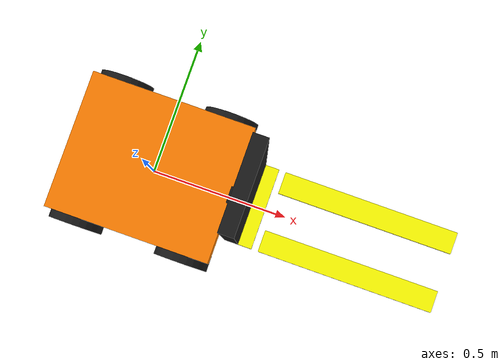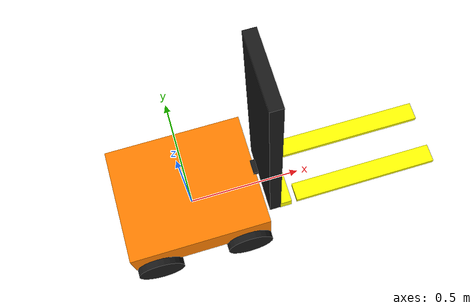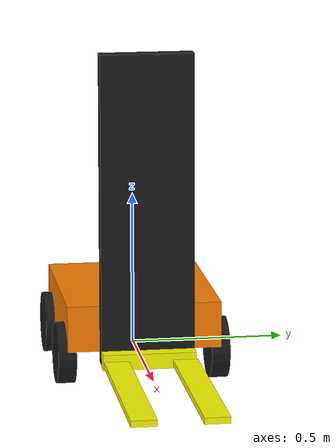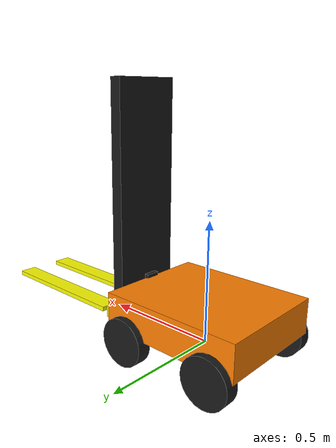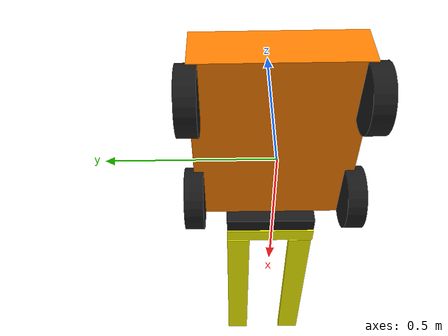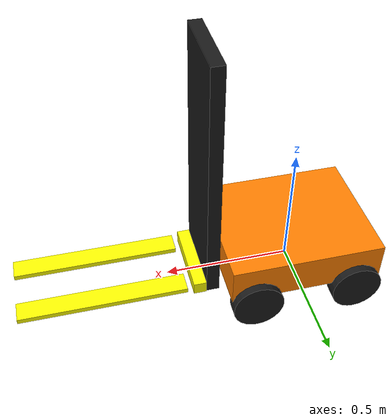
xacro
<?xml version="1.0"?>
<robot name="forklift">

  <material name="orange"><color rgba="1 0.5 0 1"/></material>
  <material name="black"><color rgba="0.1 0.1 0.1 1"/></material>
  <material name="yellow"><color rgba="1 1 0 1"/></material>

  <!-- BASE -->
  <link name="base_footprint"/>

  <link name="base_link">
    <visual>
      <geometry><box size="0.6 0.5 0.15"/></geometry>
      <material name="orange"/>
    </visual>
    <collision>
      <geometry><box size="0.6 0.5 0.15"/></geometry>
    </collision>
    <inertial>
      <mass value="8.0"/>
      <inertia ixx="0.2" ixy="0" ixz="0" iyy="0.3" iyz="0" izz="0.2"/>
    </inertial>
  </link>

  <joint name="base_joint" type="fixed">
    <parent link="base_footprint"/>
    <child link="base_link"/>
    <origin xyz="0 0 0.125"/>
  </joint>

  <!-- MAST -->
  <link name="mast_link">
    <visual>
      <geometry><box size="0.05 0.3 1.0"/></geometry>
      <material name="black"/>
    </visual>
    <collision>
      <geometry><box size="0.05 0.3 1.0"/></geometry>
    </collision>
    <inertial>
      <mass value="0.5"/>
      <inertia ixx="0.04" ixy="0" ixz="0" iyy="0.04" iyz="0" izz="0.001"/>
    </inertial>
  </link>

  <joint name="mast_joint" type="fixed">
    <parent link="base_link"/>
    <child link="mast_link"/>
    <origin xyz="0.35 0 0.4"/>
  </joint>

  <!-- FORK CARRIAGE (moves up/down) -->
  <link name="fork_carriage">
    <visual>
      <geometry><box size="0.05 0.3 0.05"/></geometry>
      <material name="yellow"/>
    </visual>
    <collision>
      <geometry><box size="0.05 0.3 0.05"/></geometry>
    </collision>
    <inertial>
      <mass value="0.5"/>
      <inertia ixx="0.005" ixy="0" ixz="0" iyy="0.005" iyz="0" izz="0.005"/>
    </inertial>
  </link>

  <joint name="fork_lift_joint" type="prismatic">
    <parent link="mast_link"/>
    <child link="fork_carriage"/>
    <origin xyz="0.05 0 -0.48"/>
    <axis xyz="0 0 1"/>
    <limit lower="-0.12" upper="0.5" effort="50000" velocity="5.0"/>
    <dynamics damping="50.0" friction="0.0"/>
  </joint>

  <gazebo reference="fork_lift_joint">
    <implicitSpringDamper>false</implicitSpringDamper>
    <provideFeedback>true</provideFeedback>
  </gazebo>

  <!-- LEFT FORK TINE (Extended to 0.65m) -->
  <link name="left_fork">
    <visual>
      <origin xyz="0.325 0 0"/>
      <geometry><box size="0.65 0.08 0.02"/></geometry>
      <material name="yellow"/>
    </visual>
    <collision>
      <origin xyz="0.325 0 0"/>
      <geometry><box size="0.65 0.08 0.02"/></geometry>
    </collision>
    <inertial>
      <origin xyz="0.325 0 0"/>
      <mass value="0.01"/>
      <inertia ixx="0.00001" ixy="0" ixz="0" iyy="0.0001" iyz="0" izz="0.0001"/>
    </inertial>
  </link>

  <joint name="left_fork_joint" type="fixed">
    <parent link="fork_carriage"/>
    <child link="left_fork"/>
    <origin xyz="0.05 0.11 0"/>
  </joint>

  <!-- RIGHT FORK TINE (Extended to 0.65m) -->
  <link name="right_fork">
    <visual>
      <origin xyz="0.325 0 0"/>
      <geometry><box size="0.65 0.08 0.02"/></geometry>
      <material name="yellow"/>
    </visual>
    <collision>
      <origin xyz="0.325 0 0"/>
      <geometry><box size="0.65 0.08 0.02"/></geometry>
    </collision>
    <inertial>
      <origin xyz="0.325 0 0"/>
      <mass value="0.01"/>
      <inertia ixx="0.00001" ixy="0" ixz="0" iyy="0.0001" iyz="0" izz="0.0001"/>
    </inertial>
  </link>

  <joint name="right_fork_joint" type="fixed">
    <parent link="fork_carriage"/>
    <child link="right_fork"/>
    <origin xyz="0.05 -0.11 0"/>
  </joint>

  <!-- CAMERA -->
  <link name="camera_link">
    <visual>
      <geometry><box size="0.02 0.06 0.02"/></geometry>
      <material name="black"/>
    </visual>
    <inertial>
      <mass value="0.05"/>
      <inertia ixx="0.0001" ixy="0" ixz="0" iyy="0.0001" iyz="0" izz="0.0001"/>
    </inertial>
  </link>

  <joint name="camera_joint" type="fixed">
    <parent link="base_link"/>
    <child link="camera_link"/>
    <origin xyz="0.3 0 0.08"/>
  </joint>

  <!-- LEFT FRONT WHEEL -->
  <link name="left_front_wheel">
    <visual>
      <origin rpy="1.57 0 0"/>
      <geometry><cylinder radius="0.1" length="0.06"/></geometry>
      <material name="black"/>
    </visual>
    <collision>
      <origin rpy="1.57 0 0"/>
      <geometry><cylinder radius="0.1" length="0.06"/></geometry>
    </collision>
    <inertial>
      <mass value="2.0"/>
      <inertia ixx="0.01" ixy="0" ixz="0" iyy="0.015" iyz="0" izz="0.01"/>
    </inertial>
  </link>
  <joint name="left_front_wheel_joint" type="continuous">
    <parent link="base_link"/>
    <child link="left_front_wheel"/>
    <origin xyz="0.2 0.25 -0.1"/>
    <axis xyz="0 1 0"/>
    <dynamics damping="0.1" friction="0.1"/>
  </joint>

  <!-- LEFT REAR WHEEL -->
  <link name="left_rear_wheel">
    <visual>
      <origin rpy="1.57 0 0"/>
      <geometry><cylinder radius="0.1" length="0.06"/></geometry>
      <material name="black"/>
    </visual>
    <collision>
      <origin rpy="1.57 0 0"/>
      <geometry><cylinder radius="0.1" length="0.06"/></geometry>
    </collision>
    <inertial>
      <mass value="2.0"/>
      <inertia ixx="0.01" ixy="0" ixz="0" iyy="0.015" iyz="0" izz="0.01"/>
    </inertial>
  </link>
  <joint name="left_rear_wheel_joint" type="continuous">
    <parent link="base_link"/>
    <child link="left_rear_wheel"/>
    <origin xyz="-0.2 0.25 -0.1"/>
    <axis xyz="0 1 0"/>
    <dynamics damping="0.0" friction="0.0"/>
  </joint>

  <!-- RIGHT FRONT WHEEL -->
  <link name="right_front_wheel">
    <visual>
      <origin rpy="1.57 0 0"/>
      <geometry><cylinder radius="0.1" length="0.06"/></geometry>
      <material name="black"/>
    </visual>
    <collision>
      <origin rpy="1.57 0 0"/>
      <geometry><cylinder radius="0.1" length="0.06"/></geometry>
    </collision>
    <inertial>
      <mass value="2.0"/>
      <inertia ixx="0.01" ixy="0" ixz="0" iyy="0.015" iyz="0" izz="0.01"/>
    </inertial>
  </link>
  <joint name="right_front_wheel_joint" type="continuous">
    <parent link="base_link"/>
    <child link="right_front_wheel"/>
    <origin xyz="0.2 -0.25 -0.1"/>
    <axis xyz="0 1 0"/>
    <dynamics damping="0.1" friction="0.1"/>
  </joint>

  <!-- RIGHT REAR WHEEL -->
  <link name="right_rear_wheel">
    <visual>
      <origin rpy="1.57 0 0"/>
      <geometry><cylinder radius="0.1" length="0.06"/></geometry>
      <material name="black"/>
    </visual>
    <collision>
      <origin rpy="1.57 0 0"/>
      <geometry><cylinder radius="0.1" length="0.06"/></geometry>
    </collision>
    <inertial>
      <mass value="2.0"/>
      <inertia ixx="0.01" ixy="0" ixz="0" iyy="0.015" iyz="0" izz="0.01"/>
    </inertial>
  </link>
  <joint name="right_rear_wheel_joint" type="continuous">
    <parent link="base_link"/>
    <child link="right_rear_wheel"/>
    <origin xyz="-0.2 -0.25 -0.1"/>
    <axis xyz="0 1 0"/>
    <dynamics damping="0.0" friction="0.0"/>
  </joint>

  <!-- ros2_control for joint control -->
  <ros2_control name="GazeboSystem" type="system">
    <hardware>
      <plugin>gazebo_ros2_control/GazeboSystem</plugin>
    </hardware>

    <!-- Drive wheels (front wheels only for better turning like real forklifts) -->
    <joint name="left_front_wheel_joint">
      <command_interface name="velocity">
        <param name="min">-10</param>
        <param name="max">10</param>
      </command_interface>
      <state_interface name="velocity"/>
      <state_interface name="position"/>
    </joint>

    <joint name="right_front_wheel_joint">
      <command_interface name="velocity">
        <param name="min">-10</param>
        <param name="max">10</param>
      </command_interface>
      <state_interface name="velocity"/>
      <state_interface name="position"/>
    </joint>

    <!-- Fork lift joint -->
    <joint name="fork_lift_joint">
      <command_interface name="position">
        <param name="min">-0.12</param>
        <param name="max">0.5</param>
      </command_interface>
      <state_interface name="position"/>
      <state_interface name="velocity"/>
    </joint>
  </ros2_control>

  <!-- Gazebo ros2_control plugin -->
  <gazebo>
    <plugin filename="libgazebo_ros2_control.so" name="gazebo_ros2_control">
      <parameters>$(find forklift_bot)/config/controllers.yaml</parameters>
    </plugin>
  </gazebo>

  <!-- CAMERA -->
  <gazebo reference="camera_link">
    <sensor type="camera" name="camera">
      <always_on>true</always_on>
      <update_rate>30.0</update_rate>
      <camera>
        <horizontal_fov>1.39</horizontal_fov>
        <image>
          <width>640</width>
          <height>480</height>
          <format>R8G8B8</format>
        </image>
        <clip>
          <near>0.05</near>
          <far>50</far>
        </clip>
      </camera>
      <plugin name="camera_controller" filename="libgazebo_ros_camera.so">
        <cameraName>camera</cameraName>
        <imageTopicName>image_raw</imageTopicName>
        <cameraInfoTopicName>camera_info</cameraInfoTopicName>
        <frameName>camera_link</frameName>
      </plugin>
    </sensor>
  </gazebo>

  <!-- Wheel friction and materials -->
  <gazebo reference="left_front_wheel"><mu1>1.5</mu1><mu2>1.5</mu2><kp>1000000.0</kp><kd>100.0</kd><material>Gazebo/FlatBlack</material></gazebo>
  <gazebo reference="right_front_wheel"><mu1>1.5</mu1><mu2>1.5</mu2><kp>1000000.0</kp><kd>100.0</kd><material>Gazebo/FlatBlack</material></gazebo>
  <gazebo reference="left_rear_wheel"><mu1>0.3</mu1><mu2>0.3</mu2><kp>1000000.0</kp><kd>0.1</kd><material>Gazebo/FlatBlack</material></gazebo>
  <gazebo reference="right_rear_wheel"><mu1>0.3</mu1><mu2>0.3</mu2><kp>1000000.0</kp><kd>0.1</kd><material>Gazebo/FlatBlack</material></gazebo>

  <!-- Colors -->
  <gazebo reference="base_link"><material>Gazebo/Orange</material></gazebo>
  <gazebo reference="mast_link"><material>Gazebo/Black</material></gazebo>
  <gazebo reference="fork_carriage"><material>Gazebo/Yellow</material></gazebo>
  <gazebo reference="left_fork"><material>Gazebo/Yellow</material><mu1>2000.0</mu1><mu2>2000.0</mu2></gazebo>
  <gazebo reference="right_fork"><material>Gazebo/Yellow</material><mu1>2000.0</mu1><mu2>2000.0</mu2></gazebo>

</robot>
